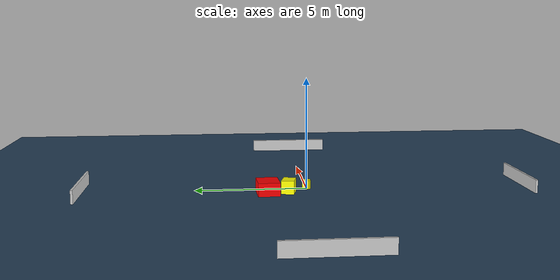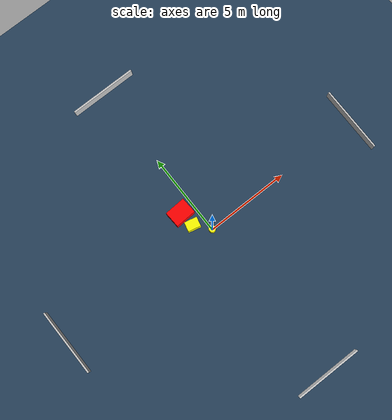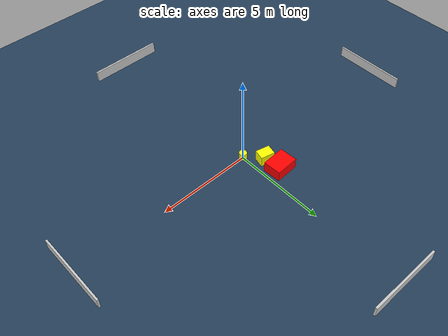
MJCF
<?xml version="1.0" ?>
<mujoco model="generated_environment">
  <option timestep="0.01" integrator="RK4" cone="elliptic"/>
  <default>
    <geom density="1"/>
  </default>
  <asset>
    <texture builtin="gradient" height="3072" name="skybox" rgb1="0.3 0.5 0.7" rgb2="0 0 0" type="skybox" width="512"/>
    <texture builtin="checker" height="300" name="groundplane" rgb1="0.2 0.3 0.4" rgb2="0.1 0.2 0.3" type="2d" width="300"/>
    <material name="groundplane" reflectance="0.2" texrepeat="5 5" texture="groundplane"/>
  </asset>
  <worldbody>
    <light dir="0 0 -1" directional="true" pos="0 0 1.5"/>
    <geom condim="3" friction="0.5 0.005 0.001" material="groundplane" name="floor" pos="0 0 0" size="0 0 0.05" type="plane"/>
    <body name="walls">
      <geom name="wall_1" condim="4" pos="-10.0 0.0 0.3" rgba="0.800000011920929 0.800000011920929 0.800000011920929 1.0" size="0.05 2.0 0.3" type="box"/>
      <geom name="wall_2" condim="4" pos="10.0 0.0 0.3" rgba="0.800000011920929 0.800000011920929 0.800000011920929 1.0" size="0.05 2.0 0.3" type="box"/>
      <geom name="wall_3" condim="4" pos="0.0 -10.0 0.3" rgba="0.800000011920929 0.800000011920929 0.800000011920929 1.0" size="2.0 0.05 0.3" type="box"/>
      <geom name="wall_4" condim="4" pos="0.0 10.0 0.3" rgba="0.800000011920929 0.800000011920929 0.800000011920929 1.0" size="2.0 0.05 0.3" type="box"/>
    </body>
    <body name="robot">
      <joint name="joint_x" type="slide" pos="0 0 0" axis="1 0 0"/>
      <joint name="joint_y" type="slide" pos="0 0 0" axis="0 1 0"/>
      <geom name="robot" type="cylinder" pos="0.0 0.0 0.2" size="0.2 0.2 0.0" mass="5.0" friction="1.0 0.005 0.0001" condim="4" rgba="1.0 1.0 0.0 1.0"/>
    </body>
    <body name="obstacle_1_movable">
      <geom name="obstacle_1_movable" condim="4" pos="-0.717325578325461 0.8527728853939356 0.3" euler="0 0 166.94143337864176" friction="0.0 0.005 0.001" rgba="1.0 1.0 0.0 1.0" size="0.3808301702487143 0.2791662076301073 0.3" type="box" mass="0.1"/>
      <joint type="free"/>
    </body>
    <body name="obstacle_2_static">
      <geom name="obstacle_2_static" condim="4" pos="-0.8403099077868359 1.784803170561031 0.3" euler="0 0 273.1198113412283" friction="0.0 0.005 0.001" rgba="1.0 0.0 0.0 1.0" size="0.4835916348775309 0.6263157317513159 0.3" type="box"/>
    </body>
  </worldbody>
  <actuator>
    <motor name="actuator_x" joint="joint_x" gear="1" ctrlrange="-1 1"/>
    <motor name="actuator_y" joint="joint_y" gear="1" ctrlrange="-1 1"/>
  </actuator>
</mujoco>
